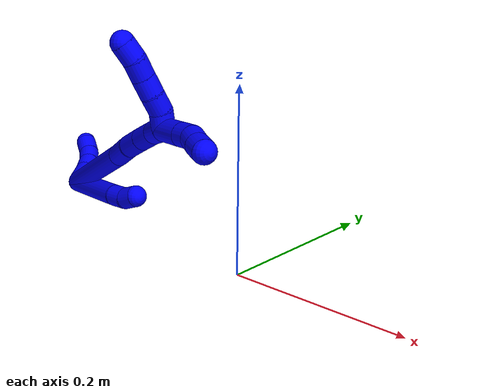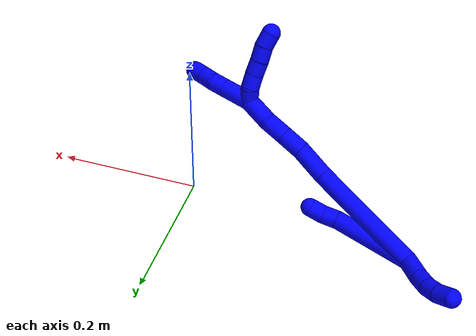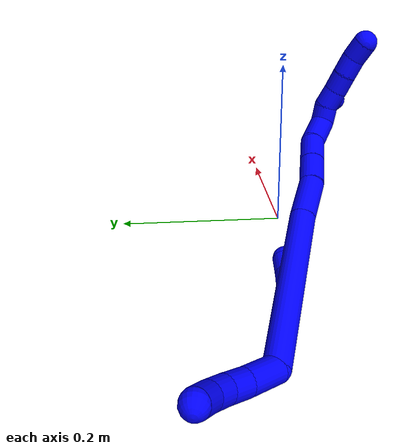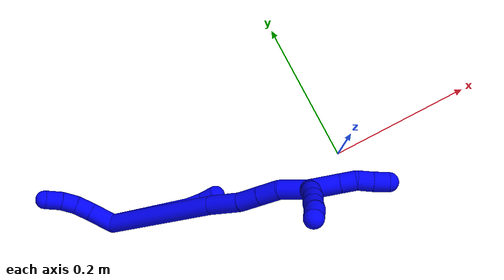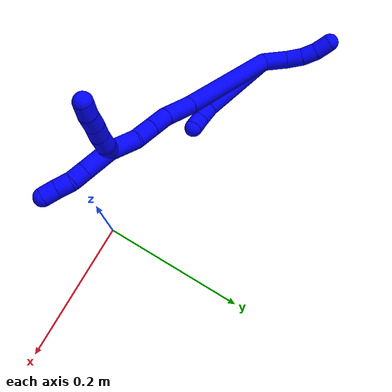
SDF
<sdf version="1.7">
 <world name="default">
  <plugin name="TubeGeneratorPlugin" filename="libtube_generator_plugin.so"/>
  <model name="photoneo_s_sensor">
   <static>1</static>
   <pose>0 0 2 1.57079 1.57079 3.14159</pose>
   <link name="link">
    <inertial><mass>0.1</mass></inertial>
    <sensor name="sensor" type="depth">
     <update_rate>30</update_rate>
     <camera>
      <horizontal_fov>1.22</horizontal_fov>
      <image><width>1920</width><height>1200</height><format>B8G8R8</format></image>
      <clip><near>0.1</near><far>4</far></clip>
      <depth_camera><output>points</output></depth_camera>
     </camera>
     <plugin name="camera_plugin" filename="libgazebo_ros_depth_camera.so">
      <baseline>0.2</baseline>
      <alwaysOn>1</alwaysOn>
      <updateRate>0.0</updateRate>
      <cameraName>camera_ir</cameraName>
      <imageTopicName>/camera/color/image_raw</imageTopicName>
      <cameraInfoTopicName>/camera/color/camera_info</cameraInfoTopicName>
      <depthImageTopicName>/camera/depth/image_raw</depthImageTopicName>
      <depthImageCameraInfoTopicName>/camera/depth/camera_info</depthImageCameraInfoTopicName>
      <pointCloudTopicName>/camera/depth/points</pointCloudTopicName>
      <frameName>fr_optical</frameName>
      <pointCloudCutoff>0.1</pointCloudCutoff>
      <pointCloudCutoffMax>2.0</pointCloudCutoffMax>
      <distortionK1>0</distortionK1>
      <distortionK2>0</distortionK2>
      <distortionK3>0</distortionK3>
      <distortionT1>0</distortionT1>
      <distortionT2>0</distortionT2>
      <CxPrime>0</CxPrime>
      <Cx>0</Cx>
      <Cy>0</Cy>
      <focalLength>0</focalLength>
      <hackBaseline>0</hackBaseline>
     </plugin>
    </sensor>
   </link>
  </model>
  <gravity>0 0 -9.8</gravity>
  <magnetic_field>6e-06 2.3e-05 -4.2e-05</magnetic_field>
  <atmosphere type="adiabatic"/>
  <physics name="default_physics" default="0" type="ode">
   <max_step_size>0.003</max_step_size>
   <real_time_factor>1</real_time_factor>
   <real_time_update_rate>1000</real_time_update_rate>
   <max_contacts>10000</max_contacts>
   <ode>
    <solver>
     <type>quick</type>
     <iters>100</iters>
     <sor>1.3</sor>
     <use_dynamic_moi_rescaling>0</use_dynamic_moi_rescaling>
    </solver>
    <constraints>
     <contact_max_correcting_vel>0</contact_max_correcting_vel>
     <contact_surface_layer>0.001</contact_surface_layer>
     <cfm>0</cfm>
     <erp>0.2</erp>
    </constraints>
   </ode>
  </physics>
  <scene><ambient>0.4 0.4 0.4 1</ambient><background>0.7 0.7 0.7 1</background><shadows>0</shadows></scene>
  <audio><device>default</device></audio>
  <spherical_coordinates>
   <surface_model>EARTH_WGS84</surface_model>
   <latitude_deg>0</latitude_deg>
   <longitude_deg>0</longitude_deg>
   <elevation>0</elevation>
   <heading_deg>0</heading_deg>
  </spherical_coordinates>
  <model name="bin">
   <static>1</static>
   <link name="bottom">
    <collision name="collision-bottom">
     <pose>0 0 -0.01 0 -0 0</pose>
     <geometry><box><size>0.8 0.6 0.02</size></box></geometry>
     <surface>
      <friction><ode><mu>100</mu><mu2>100</mu2></ode></friction>
      <contact><collide_bitmask>65535</collide_bitmask></contact>
     </surface>
    </collision>
   </link>
   <link name="west_wall">
    <collision name="collision-west_wall">
     <pose>-0.41 0 0.1 0 -0 0</pose>
     <geometry><box><size>0.02 0.6 0.2</size></box></geometry>
     <surface>
      <friction><ode><mu>100</mu><mu2>100</mu2></ode></friction>
      <contact><collide_bitmask>65535</collide_bitmask></contact>
     </surface>
    </collision>
   </link>
   <link name="east_wall">
    <collision name="collision-east_wall">
     <pose>0.41 0 0.1 0 -0 0</pose>
     <geometry><box><size>0.02 0.6 0.2</size></box></geometry>
     <surface>
      <friction><ode><mu>100</mu><mu2>100</mu2></ode></friction>
      <contact><collide_bitmask>65535</collide_bitmask></contact>
     </surface>
    </collision>
   </link>
   <link name="south_wall">
    <collision name="collision-south_wall">
     <pose>0 -0.31 0.1 0 -0 0</pose>
     <geometry><box><size>0.8 0.02 0.2</size></box></geometry>
     <surface>
      <friction><ode><mu>100</mu><mu2>100</mu2></ode></friction>
      <contact><collide_bitmask>65535</collide_bitmask></contact>
     </surface>
    </collision>
   </link>
   <link name="north_wall">
    <collision name="collision-north_wall">
     <pose>0 0.31 0.1 0 -0 0</pose>
     <geometry><box><size>0.8 0.02 0.2</size></box></geometry>
     <surface>
      <friction><ode><mu>100</mu><mu2>100</mu2></ode></friction>
      <contact><collide_bitmask>65535</collide_bitmask></contact>
     </surface>
    </collision>
   </link>
  </model>
  <model name="1">
   <static>0</static>
   <link name="1">
    <collision name="collision-cylinder-e_1_2_8">
     <pose>0.003344 -0.003769 -0.054073 3.072 0.061619 1.44931</pose>
     <geometry><cylinder><radius>0.0125</radius><length>0.108615</length></cylinder></geometry>
     <surface>
      <friction><ode><mu>1.16</mu><mu2>1.16</mu2><slip1>0</slip1><slip2>0</slip2></ode></friction>
      <contact><ode><kp>1e+06</kp><kd>1</kd><max_vel>0</max_vel><min_depth>0.001</min_depth></ode></contact>
     </surface>
    </collision>
    <visual name="visual-cylinder-e_1_2_8">
     <pose>0.003344 -0.003769 -0.054073 3.072 0.061619 1.44931</pose>
     <geometry><cylinder><radius>0.0125</radius><length>0.108615</length></cylinder></geometry>
     <material><ambient>0 0 1 1</ambient></material>
    </visual>
    <collision name="collision-cylinder-e_2_8_9">
     <pose>0.005626 -0.007527 -0.118743 -3.14054 -0.099923 3.1206</pose>
     <geometry><cylinder><radius>0.0125</radius><length>0.021299</length></cylinder></geometry>
     <surface>
      <friction><ode><mu>1.16</mu><mu2>1.16</mu2><slip1>0</slip1><slip2>0</slip2></ode></friction>
      <contact><ode><kp>1e+06</kp><kd>1</kd><max_vel>0</max_vel><min_depth>0.001</min_depth></ode></contact>
     </surface>
    </collision>
    <visual name="visual-cylinder-e_2_8_9">
     <pose>0.005626 -0.007527 -0.118743 -3.14054 -0.099923 3.1206</pose>
     <geometry><cylinder><radius>0.0125</radius><length>0.021299</length></cylinder></geometry>
     <material><ambient>0 0 1 1</ambient></material>
    </visual>
    <collision name="collision-cylinder-e_3_9_6">
     <pose>0.004946 -0.004791 -0.138998 -2.86654 0.038032 -0.273119</pose>
     <geometry><cylinder><radius>0.0125</radius><length>0.020085</length></cylinder></geometry>
     <surface>
      <friction><ode><mu>1.16</mu><mu2>1.16</mu2><slip1>0</slip1><slip2>0</slip2></ode></friction>
      <contact><ode><kp>1e+06</kp><kd>1</kd><max_vel>0</max_vel><min_depth>0.001</min_depth></ode></contact>
     </surface>
    </collision>
    <visual name="visual-cylinder-e_3_9_6">
     <pose>0.004946 -0.004791 -0.138998 -2.86654 0.038032 -0.273119</pose>
     <geometry><cylinder><radius>0.0125</radius><length>0.020085</length></cylinder></geometry>
     <material><ambient>0 0 1 1</ambient></material>
    </visual>
    <collision name="collision-cylinder-e_1_2_10">
     <pose>-0.006559 0.010748 0.011905 -0.73436 -0.388167 0.150914</pose>
     <geometry><cylinder><radius>0.0125</radius><length>0.034656</length></cylinder></geometry>
     <surface>
      <friction><ode><mu>1.16</mu><mu2>1.16</mu2><slip1>0</slip1><slip2>0</slip2></ode></friction>
      <contact><ode><kp>1e+06</kp><kd>1</kd><max_vel>0</max_vel><min_depth>0.001</min_depth></ode></contact>
     </surface>
    </collision>
    <visual name="visual-cylinder-e_1_2_10">
     <pose>-0.006559 0.010748 0.011905 -0.73436 -0.388167 0.150914</pose>
     <geometry><cylinder><radius>0.0125</radius><length>0.034656</length></cylinder></geometry>
     <material><ambient>0 0 1 1</ambient></material>
    </visual>
    <collision name="collision-cylinder-e_2_10_11">
     <pose>-0.016111 0.029092 0.031447 -0.782791 -0.271116 0.112458</pose>
     <geometry><cylinder><radius>0.0125</radius><length>0.02236</length></cylinder></geometry>
     <surface>
      <friction><ode><mu>1.16</mu><mu2>1.16</mu2><slip1>0</slip1><slip2>0</slip2></ode></friction>
      <contact><ode><kp>1e+06</kp><kd>1</kd><max_vel>0</max_vel><min_depth>0.001</min_depth></ode></contact>
     </surface>
    </collision>
    <visual name="visual-cylinder-e_2_10_11">
     <pose>-0.016111 0.029092 0.031447 -0.782791 -0.271116 0.112458</pose>
     <geometry><cylinder><radius>0.0125</radius><length>0.02236</length></cylinder></geometry>
     <material><ambient>0 0 1 1</ambient></material>
    </visual>
    <collision name="collision-cylinder-e_3_11_12">
     <pose>-0.020005 0.043408 0.046797 -0.716574 -0.087773 0.032885</pose>
     <geometry><cylinder><radius>0.0125</radius><length>0.020539</length></cylinder></geometry>
     <surface>
      <friction><ode><mu>1.16</mu><mu2>1.16</mu2><slip1>0</slip1><slip2>0</slip2></ode></friction>
      <contact><ode><kp>1e+06</kp><kd>1</kd><max_vel>0</max_vel><min_depth>0.001</min_depth></ode></contact>
     </surface>
    </collision>
    <visual name="visual-cylinder-e_3_11_12">
     <pose>-0.020005 0.043408 0.046797 -0.716574 -0.087773 0.032885</pose>
     <geometry><cylinder><radius>0.0125</radius><length>0.020539</length></cylinder></geometry>
     <material><ambient>0 0 1 1</ambient></material>
    </visual>
    <collision name="collision-cylinder-e_4_12_5">
     <pose>-0.019626 0.056805 0.063439 -0.642225 0.114227 -0.038032</pose>
     <geometry><cylinder><radius>0.0125</radius><length>0.022446</length></cylinder></geometry>
     <surface>
      <friction><ode><mu>1.16</mu><mu2>1.16</mu2><slip1>0</slip1><slip2>0</slip2></ode></friction>
      <contact><ode><kp>1e+06</kp><kd>1</kd><max_vel>0</max_vel><min_depth>0.001</min_depth></ode></contact>
     </surface>
    </collision>
    <visual name="visual-cylinder-e_4_12_5">
     <pose>-0.019626 0.056805 0.063439 -0.642225 0.114227 -0.038032</pose>
     <geometry><cylinder><radius>0.0125</radius><length>0.022446</length></cylinder></geometry>
     <material><ambient>0 0 1 1</ambient></material>
    </visual>
    <collision name="collision-cylinder-e_1_2_13">
     <pose>0.025376 0.013118 -0.073785 -2.96565 0.32649 -2.15833</pose>
     <geometry><cylinder><radius>0.0125</radius><length>0.158243</length></cylinder></geometry>
     <surface>
      <friction><ode><mu>1.16</mu><mu2>1.16</mu2><slip1>0</slip1><slip2>0</slip2></ode></friction>
      <contact><ode><kp>1e+06</kp><kd>1</kd><max_vel>0</max_vel><min_depth>0.001</min_depth></ode></contact>
     </surface>
    </collision>
    <visual name="visual-cylinder-e_1_2_13">
     <pose>0.025376 0.013118 -0.073785 -2.96565 0.32649 -2.15833</pose>
     <geometry><cylinder><radius>0.0125</radius><length>0.158243</length></cylinder></geometry>
     <material><ambient>0 0 1 1</ambient></material>
    </visual>
    <collision name="collision-cylinder-e_2_13_14">
     <pose>0.059211 0.029019 -0.167893 -3.00549 0.391141 -2.47888</pose>
     <geometry><cylinder><radius>0.0125</radius><length>0.044377</length></cylinder></geometry>
     <surface>
      <friction><ode><mu>1.16</mu><mu2>1.16</mu2><slip1>0</slip1><slip2>0</slip2></ode></friction>
      <contact><ode><kp>1e+06</kp><kd>1</kd><max_vel>0</max_vel><min_depth>0.001</min_depth></ode></contact>
     </surface>
    </collision>
    <visual name="visual-cylinder-e_2_13_14">
     <pose>0.059211 0.029019 -0.167893 -3.00549 0.391141 -2.47888</pose>
     <geometry><cylinder><radius>0.0125</radius><length>0.044377</length></cylinder></geometry>
     <material><ambient>0 0 1 1</ambient></material>
    </visual>
    <collision name="collision-cylinder-e_3_14_15">
     <pose>0.071458 0.035588 -0.202449 -2.88164 0.251732 -1.53831</pose>
     <geometry><cylinder><radius>0.0125</radius><length>0.030415</length></cylinder></geometry>
     <surface>
      <friction><ode><mu>1.16</mu><mu2>1.16</mu2><slip1>0</slip1><slip2>0</slip2></ode></friction>
      <contact><ode><kp>1e+06</kp><kd>1</kd><max_vel>0</max_vel><min_depth>0.001</min_depth></ode></contact>
     </surface>
    </collision>
    <visual name="visual-cylinder-e_3_14_15">
     <pose>0.071458 0.035588 -0.202449 -2.88164 0.251732 -1.53831</pose>
     <geometry><cylinder><radius>0.0125</radius><length>0.030415</length></cylinder></geometry>
     <material><ambient>0 0 1 1</ambient></material>
    </visual>
    <collision name="collision-cylinder-e_4_15_16">
     <pose>0.078661 0.042679 -0.23011 -2.90018 0.24212 -1.57374</pose>
     <geometry><cylinder><radius>0.0125</radius><length>0.028489</length></cylinder></geometry>
     <surface>
      <friction><ode><mu>1.16</mu><mu2>1.16</mu2><slip1>0</slip1><slip2>0</slip2></ode></friction>
      <contact><ode><kp>1e+06</kp><kd>1</kd><max_vel>0</max_vel><min_depth>0.001</min_depth></ode></contact>
     </surface>
    </collision>
    <visual name="visual-cylinder-e_4_15_16">
     <pose>0.078661 0.042679 -0.23011 -2.90018 0.24212 -1.57374</pose>
     <geometry><cylinder><radius>0.0125</radius><length>0.028489</length></cylinder></geometry>
     <material><ambient>0 0 1 1</ambient></material>
    </visual>
    <collision name="collision-cylinder-e_5_16_1">
     <pose>0.088908 0.045177 -0.261504 3.0966 0.363007 2.89759</pose>
     <geometry><cylinder><radius>0.0125</radius><length>0.038476</length></cylinder></geometry>
     <surface>
      <friction><ode><mu>1.16</mu><mu2>1.16</mu2><slip1>0</slip1><slip2>0</slip2></ode></friction>
      <contact><ode><kp>1e+06</kp><kd>1</kd><max_vel>0</max_vel><min_depth>0.001</min_depth></ode></contact>
     </surface>
    </collision>
    <visual name="visual-cylinder-e_5_16_1">
     <pose>0.088908 0.045177 -0.261504 3.0966 0.363007 2.89759</pose>
     <geometry><cylinder><radius>0.0125</radius><length>0.038476</length></cylinder></geometry>
     <material><ambient>0 0 1 1</ambient></material>
    </visual>
    <collision name="collision-cylinder-e_1_1_17">
     <pose>0.103429 0.050544 -0.281119 -1.83162 0.877341 -1.09665</pose>
     <geometry><cylinder><radius>0.0125</radius><length>0.02</length></cylinder></geometry>
     <surface>
      <friction><ode><mu>1.16</mu><mu2>1.16</mu2><slip1>0</slip1><slip2>0</slip2></ode></friction>
      <contact><ode><kp>1e+06</kp><kd>1</kd><max_vel>0</max_vel><min_depth>0.001</min_depth></ode></contact>
     </surface>
    </collision>
    <visual name="visual-cylinder-e_1_1_17">
     <pose>0.103429 0.050544 -0.281119 -1.83162 0.877341 -1.09665</pose>
     <geometry><cylinder><radius>0.0125</radius><length>0.02</length></cylinder></geometry>
     <material><ambient>0 0 1 1</ambient></material>
    </visual>
    <collision name="collision-cylinder-e_2_17_18">
     <pose>0.120429 0.060314 -0.283411 -1.74786 1.19695 -1.36734</pose>
     <geometry><cylinder><radius>0.0125</radius><length>0.02</length></cylinder></geometry>
     <surface>
      <friction><ode><mu>1.16</mu><mu2>1.16</mu2><slip1>0</slip1><slip2>0</slip2></ode></friction>
      <contact><ode><kp>1e+06</kp><kd>1</kd><max_vel>0</max_vel><min_depth>0.001</min_depth></ode></contact>
     </surface>
    </collision>
    <visual name="visual-cylinder-e_2_17_18">
     <pose>0.120429 0.060314 -0.283411 -1.74786 1.19695 -1.36734</pose>
     <geometry><cylinder><radius>0.0125</radius><length>0.02</length></cylinder></geometry>
     <material><ambient>0 0 1 1</ambient></material>
    </visual>
    <collision name="collision-cylinder-e_3_18_19">
     <pose>0.138786 0.068159 -0.28379 -1.50881 1.13089 -1.07553</pose>
     <geometry><cylinder><radius>0.0125</radius><length>0.02</length></cylinder></geometry>
     <surface>
      <friction><ode><mu>1.16</mu><mu2>1.16</mu2><slip1>0</slip1><slip2>0</slip2></ode></friction>
      <contact><ode><kp>1e+06</kp><kd>1</kd><max_vel>0</max_vel><min_depth>0.001</min_depth></ode></contact>
     </surface>
    </collision>
    <visual name="visual-cylinder-e_3_18_19">
     <pose>0.138786 0.068159 -0.28379 -1.50881 1.13089 -1.07553</pose>
     <geometry><cylinder><radius>0.0125</radius><length>0.02</length></cylinder></geometry>
     <material><ambient>0 0 1 1</ambient></material>
    </visual>
    <collision name="collision-cylinder-e_4_19_20">
     <pose>0.15701 0.076348 -0.284075 -1.70923 1.16189 -1.29253</pose>
     <geometry><cylinder><radius>0.0125</radius><length>0.02</length></cylinder></geometry>
     <surface>
      <friction><ode><mu>1.16</mu><mu2>1.16</mu2><slip1>0</slip1><slip2>0</slip2></ode></friction>
      <contact><ode><kp>1e+06</kp><kd>1</kd><max_vel>0</max_vel><min_depth>0.001</min_depth></ode></contact>
     </surface>
    </collision>
    <visual name="visual-cylinder-e_4_19_20">
     <pose>0.15701 0.076348 -0.284075 -1.70923 1.16189 -1.29253</pose>
     <geometry><cylinder><radius>0.0125</radius><length>0.02</length></cylinder></geometry>
     <material><ambient>0 0 1 1</ambient></material>
    </visual>
    <collision name="collision-cylinder-e_5_20_4">
     <pose>0.175566 0.083482 -0.283286 -1.17452 1.21703 -0.868424</pose>
     <geometry><cylinder><radius>0.0125</radius><length>0.02</length></cylinder></geometry>
     <surface>
      <friction><ode><mu>1.16</mu><mu2>1.16</mu2><slip1>0</slip1><slip2>0</slip2></ode></friction>
      <contact><ode><kp>1e+06</kp><kd>1</kd><max_vel>0</max_vel><min_depth>0.001</min_depth></ode></contact>
     </surface>
    </collision>
    <visual name="visual-cylinder-e_5_20_4">
     <pose>0.175566 0.083482 -0.283286 -1.17452 1.21703 -0.868424</pose>
     <geometry><cylinder><radius>0.0125</radius><length>0.02</length></cylinder></geometry>
     <material><ambient>0 0 1 1</ambient></material>
    </visual>
    <collision name="collision-cylinder-e_1_1_21">
     <pose>0.096908 0.042331 -0.299131 3.03838 0.059063 1.039</pose>
     <geometry><cylinder><radius>0.0125</radius><length>0.0396</length></cylinder></geometry>
     <surface>
      <friction><ode><mu>1.16</mu><mu2>1.16</mu2><slip1>0</slip1><slip2>0</slip2></ode></friction>
      <contact><ode><kp>1e+06</kp><kd>1</kd><max_vel>0</max_vel><min_depth>0.001</min_depth></ode></contact>
     </surface>
    </collision>
    <visual name="visual-cylinder-e_1_1_21">
     <pose>0.096908 0.042331 -0.299131 3.03838 0.059063 1.039</pose>
     <geometry><cylinder><radius>0.0125</radius><length>0.0396</length></cylinder></geometry>
     <material><ambient>0 0 1 1</ambient></material>
    </visual>
    <collision name="collision-cylinder-e_2_21_22">
     <pose>0.098723 0.039282 -0.328841 3.04116 0.063952 1.13358</pose>
     <geometry><cylinder><radius>0.0125</radius><length>0.020243</length></cylinder></geometry>
     <surface>
      <friction><ode><mu>1.16</mu><mu2>1.16</mu2><slip1>0</slip1><slip2>0</slip2></ode></friction>
      <contact><ode><kp>1e+06</kp><kd>1</kd><max_vel>0</max_vel><min_depth>0.001</min_depth></ode></contact>
     </surface>
    </collision>
    <visual name="visual-cylinder-e_2_21_22">
     <pose>0.098723 0.039282 -0.328841 3.04116 0.063952 1.13358</pose>
     <geometry><cylinder><radius>0.0125</radius><length>0.020243</length></cylinder></geometry>
     <material><ambient>0 0 1 1</ambient></material>
    </visual>
    <collision name="collision-cylinder-e_3_22_23">
     <pose>0.100693 0.034249 -0.347992 2.72561 0.132193 0.607861</pose>
     <geometry><cylinder><radius>0.0125</radius><length>0.020074</length></cylinder></geometry>
     <surface>
      <friction><ode><mu>1.16</mu><mu2>1.16</mu2><slip1>0</slip1><slip2>0</slip2></ode></friction>
      <contact><ode><kp>1e+06</kp><kd>1</kd><max_vel>0</max_vel><min_depth>0.001</min_depth></ode></contact>
     </surface>
    </collision>
    <visual name="visual-cylinder-e_3_22_23">
     <pose>0.100693 0.034249 -0.347992 2.72561 0.132193 0.607861</pose>
     <geometry><cylinder><radius>0.0125</radius><length>0.020074</length></cylinder></geometry>
     <material><ambient>0 0 1 1</ambient></material>
    </visual>
    <collision name="collision-cylinder-e_4_23_3">
     <pose>0.103159 0.026821 -0.366469 2.793 0.114112 0.627338</pose>
     <geometry><cylinder><radius>0.0125</radius><length>0.020083</length></cylinder></geometry>
     <surface>
      <friction><ode><mu>1.16</mu><mu2>1.16</mu2><slip1>0</slip1><slip2>0</slip2></ode></friction>
      <contact><ode><kp>1e+06</kp><kd>1</kd><max_vel>0</max_vel><min_depth>0.001</min_depth></ode></contact>
     </surface>
    </collision>
    <visual name="visual-cylinder-e_4_23_3">
     <pose>0.103159 0.026821 -0.366469 2.793 0.114112 0.627338</pose>
     <geometry><cylinder><radius>0.0125</radius><length>0.020083</length></cylinder></geometry>
     <material><ambient>0 0 1 1</ambient></material>
    </visual>
    <collision name="collision-sphere-3">
     <pose>0.104303 0.023413 -0.375845 0 -0 0</pose>
     <geometry><sphere><radius>0.0125</radius></sphere></geometry>
     <surface>
      <friction><ode><mu>1.16</mu><mu2>1.16</mu2><slip1>0</slip1><slip2>0</slip2></ode></friction>
      <contact><ode><kp>1e+06</kp><kd>1</kd><max_vel>0</max_vel><min_depth>0.001</min_depth></ode></contact>
     </surface>
    </collision>
    <visual name="visual-sphere-3">
     <pose>0.104303 0.023413 -0.375845 0 -0 0</pose>
     <geometry><sphere><radius>0.0125</radius></sphere></geometry>
     <material><ambient>0 0 1 1</ambient></material>
    </visual>
    <collision name="collision-sphere-23">
     <pose>0.102016 0.030228 -0.357093 0 -0 0</pose>
     <geometry><sphere><radius>0.0125</radius></sphere></geometry>
     <surface>
      <friction><ode><mu>1.16</mu><mu2>1.16</mu2><slip1>0</slip1><slip2>0</slip2></ode></friction>
      <contact><ode><kp>1e+06</kp><kd>1</kd><max_vel>0</max_vel><min_depth>0.001</min_depth></ode></contact>
     </surface>
    </collision>
    <visual name="visual-sphere-23">
     <pose>0.102016 0.030228 -0.357093 0 -0 0</pose>
     <geometry><sphere><radius>0.0125</radius></sphere></geometry>
     <material><ambient>0 0 1 1</ambient></material>
    </visual>
    <collision name="collision-sphere-22">
     <pose>0.09937 0.038269 -0.338891 0 -0 0</pose>
     <geometry><sphere><radius>0.0125</radius></sphere></geometry>
     <surface>
      <friction><ode><mu>1.16</mu><mu2>1.16</mu2><slip1>0</slip1><slip2>0</slip2></ode></friction>
      <contact><ode><kp>1e+06</kp><kd>1</kd><max_vel>0</max_vel><min_depth>0.001</min_depth></ode></contact>
     </surface>
    </collision>
    <visual name="visual-sphere-22">
     <pose>0.09937 0.038269 -0.338891 0 -0 0</pose>
     <geometry><sphere><radius>0.0125</radius></sphere></geometry>
     <material><ambient>0 0 1 1</ambient></material>
    </visual>
    <collision name="collision-sphere-21">
     <pose>0.098076 0.040295 -0.318791 0 -0 0</pose>
     <geometry><sphere><radius>0.0125</radius></sphere></geometry>
     <surface>
      <friction><ode><mu>1.16</mu><mu2>1.16</mu2><slip1>0</slip1><slip2>0</slip2></ode></friction>
      <contact><ode><kp>1e+06</kp><kd>1</kd><max_vel>0</max_vel><min_depth>0.001</min_depth></ode></contact>
     </surface>
    </collision>
    <visual name="visual-sphere-21">
     <pose>0.098076 0.040295 -0.318791 0 -0 0</pose>
     <geometry><sphere><radius>0.0125</radius></sphere></geometry>
     <material><ambient>0 0 1 1</ambient></material>
    </visual>
    <collision name="collision-sphere-4">
     <pose>0.184947 0.086678 -0.281949 0 -0 0</pose>
     <geometry><sphere><radius>0.0125</radius></sphere></geometry>
     <surface>
      <friction><ode><mu>1.16</mu><mu2>1.16</mu2><slip1>0</slip1><slip2>0</slip2></ode></friction>
      <contact><ode><kp>1e+06</kp><kd>1</kd><max_vel>0</max_vel><min_depth>0.001</min_depth></ode></contact>
     </surface>
    </collision>
    <visual name="visual-sphere-4">
     <pose>0.184947 0.086678 -0.281949 0 -0 0</pose>
     <geometry><sphere><radius>0.0125</radius></sphere></geometry>
     <material><ambient>0 0 1 1</ambient></material>
    </visual>
    <collision name="collision-sphere-20">
     <pose>0.166185 0.080286 -0.284624 0 -0 0</pose>
     <geometry><sphere><radius>0.0125</radius></sphere></geometry>
     <surface>
      <friction><ode><mu>1.16</mu><mu2>1.16</mu2><slip1>0</slip1><slip2>0</slip2></ode></friction>
      <contact><ode><kp>1e+06</kp><kd>1</kd><max_vel>0</max_vel><min_depth>0.001</min_depth></ode></contact>
     </surface>
    </collision>
    <visual name="visual-sphere-20">
     <pose>0.166185 0.080286 -0.284624 0 -0 0</pose>
     <geometry><sphere><radius>0.0125</radius></sphere></geometry>
     <material><ambient>0 0 1 1</ambient></material>
    </visual>
    <collision name="collision-sphere-11">
     <pose>-0.019105 0.036689 0.039083 0 -0 0</pose>
     <geometry><sphere><radius>0.0125</radius></sphere></geometry>
     <surface>
      <friction><ode><mu>1.16</mu><mu2>1.16</mu2><slip1>0</slip1><slip2>0</slip2></ode></friction>
      <contact><ode><kp>1e+06</kp><kd>1</kd><max_vel>0</max_vel><min_depth>0.001</min_depth></ode></contact>
     </surface>
    </collision>
    <visual name="visual-sphere-11">
     <pose>-0.019105 0.036689 0.039083 0 -0 0</pose>
     <geometry><sphere><radius>0.0125</radius></sphere></geometry>
     <material><ambient>0 0 1 1</ambient></material>
    </visual>
    <collision name="collision-sphere-10">
     <pose>-0.013117 0.021496 0.02381 0 -0 0</pose>
     <geometry><sphere><radius>0.0125</radius></sphere></geometry>
     <surface>
      <friction><ode><mu>1.16</mu><mu2>1.16</mu2><slip1>0</slip1><slip2>0</slip2></ode></friction>
      <contact><ode><kp>1e+06</kp><kd>1</kd><max_vel>0</max_vel><min_depth>0.001</min_depth></ode></contact>
     </surface>
    </collision>
    <visual name="visual-sphere-10">
     <pose>-0.013117 0.021496 0.02381 0 -0 0</pose>
     <geometry><sphere><radius>0.0125</radius></sphere></geometry>
     <material><ambient>0 0 1 1</ambient></material>
    </visual>
    <collision name="collision-sphere-6">
     <pose>0.005327 -0.002065 -0.148656 0 -0 0</pose>
     <geometry><sphere><radius>0.0125</radius></sphere></geometry>
     <surface>
      <friction><ode><mu>1.16</mu><mu2>1.16</mu2><slip1>0</slip1><slip2>0</slip2></ode></friction>
      <contact><ode><kp>1e+06</kp><kd>1</kd><max_vel>0</max_vel><min_depth>0.001</min_depth></ode></contact>
     </surface>
    </collision>
    <visual name="visual-sphere-6">
     <pose>0.005327 -0.002065 -0.148656 0 -0 0</pose>
     <geometry><sphere><radius>0.0125</radius></sphere></geometry>
     <material><ambient>0 0 1 1</ambient></material>
    </visual>
    <collision name="collision-sphere-9">
     <pose>0.004564 -0.007516 -0.12934 0 -0 0</pose>
     <geometry><sphere><radius>0.0125</radius></sphere></geometry>
     <surface>
      <friction><ode><mu>1.16</mu><mu2>1.16</mu2><slip1>0</slip1><slip2>0</slip2></ode></friction>
      <contact><ode><kp>1e+06</kp><kd>1</kd><max_vel>0</max_vel><min_depth>0.001</min_depth></ode></contact>
     </surface>
    </collision>
    <visual name="visual-sphere-9">
     <pose>0.004564 -0.007516 -0.12934 0 -0 0</pose>
     <geometry><sphere><radius>0.0125</radius></sphere></geometry>
     <material><ambient>0 0 1 1</ambient></material>
    </visual>
    <collision name="collision-sphere-2">
     <geometry><sphere><radius>0.0125</radius></sphere></geometry>
     <surface>
      <friction><ode><mu>1.16</mu><mu2>1.16</mu2><slip1>0</slip1><slip2>0</slip2></ode></friction>
      <contact><ode><kp>1e+06</kp><kd>1</kd><max_vel>0</max_vel><min_depth>0.001</min_depth></ode></contact>
     </surface>
    </collision>
    <visual name="visual-sphere-2">
     <geometry><sphere><radius>0.0125</radius></sphere></geometry>
     <material><ambient>0 0 1 1</ambient></material>
    </visual>
    <collision name="collision-sphere-19">
     <pose>0.147834 0.07241 -0.283526 0 -0 0</pose>
     <geometry><sphere><radius>0.0125</radius></sphere></geometry>
     <surface>
      <friction><ode><mu>1.16</mu><mu2>1.16</mu2><slip1>0</slip1><slip2>0</slip2></ode></friction>
      <contact><ode><kp>1e+06</kp><kd>1</kd><max_vel>0</max_vel><min_depth>0.001</min_depth></ode></contact>
     </surface>
    </collision>
    <visual name="visual-sphere-19">
     <pose>0.147834 0.07241 -0.283526 0 -0 0</pose>
     <geometry><sphere><radius>0.0125</radius></sphere></geometry>
     <material><ambient>0 0 1 1</ambient></material>
    </visual>
    <collision name="collision-sphere-8">
     <pose>0.006689 -0.007538 -0.108147 0 -0 0</pose>
     <geometry><sphere><radius>0.0125</radius></sphere></geometry>
     <surface>
      <friction><ode><mu>1.16</mu><mu2>1.16</mu2><slip1>0</slip1><slip2>0</slip2></ode></friction>
      <contact><ode><kp>1e+06</kp><kd>1</kd><max_vel>0</max_vel><min_depth>0.001</min_depth></ode></contact>
     </surface>
    </collision>
    <visual name="visual-sphere-8">
     <pose>0.006689 -0.007538 -0.108147 0 -0 0</pose>
     <geometry><sphere><radius>0.0125</radius></sphere></geometry>
     <material><ambient>0 0 1 1</ambient></material>
    </visual>
    <collision name="collision-sphere-12">
     <pose>-0.020906 0.050127 0.054511 0 -0 0</pose>
     <geometry><sphere><radius>0.0125</radius></sphere></geometry>
     <surface>
      <friction><ode><mu>1.16</mu><mu2>1.16</mu2><slip1>0</slip1><slip2>0</slip2></ode></friction>
      <contact><ode><kp>1e+06</kp><kd>1</kd><max_vel>0</max_vel><min_depth>0.001</min_depth></ode></contact>
     </surface>
    </collision>
    <visual name="visual-sphere-12">
     <pose>-0.020906 0.050127 0.054511 0 -0 0</pose>
     <geometry><sphere><radius>0.0125</radius></sphere></geometry>
     <material><ambient>0 0 1 1</ambient></material>
    </visual>
    <collision name="collision-sphere-5">
     <pose>-0.018347 0.063484 0.072367 0 -0 0</pose>
     <geometry><sphere><radius>0.0125</radius></sphere></geometry>
     <surface>
      <friction><ode><mu>1.16</mu><mu2>1.16</mu2><slip1>0</slip1><slip2>0</slip2></ode></friction>
      <contact><ode><kp>1e+06</kp><kd>1</kd><max_vel>0</max_vel><min_depth>0.001</min_depth></ode></contact>
     </surface>
    </collision>
    <visual name="visual-sphere-5">
     <pose>-0.018347 0.063484 0.072367 0 -0 0</pose>
     <geometry><sphere><radius>0.0125</radius></sphere></geometry>
     <material><ambient>0 0 1 1</ambient></material>
    </visual>
    <collision name="collision-sphere-13">
     <pose>0.050752 0.026236 -0.14757 0 -0 0</pose>
     <geometry><sphere><radius>0.0125</radius></sphere></geometry>
     <surface>
      <friction><ode><mu>1.16</mu><mu2>1.16</mu2><slip1>0</slip1><slip2>0</slip2></ode></friction>
      <contact><ode><kp>1e+06</kp><kd>1</kd><max_vel>0</max_vel><min_depth>0.001</min_depth></ode></contact>
     </surface>
    </collision>
    <visual name="visual-sphere-13">
     <pose>0.050752 0.026236 -0.14757 0 -0 0</pose>
     <geometry><sphere><radius>0.0125</radius></sphere></geometry>
     <material><ambient>0 0 1 1</ambient></material>
    </visual>
    <collision name="collision-sphere-14">
     <pose>0.06767 0.031802 -0.188216 0 -0 0</pose>
     <geometry><sphere><radius>0.0125</radius></sphere></geometry>
     <surface>
      <friction><ode><mu>1.16</mu><mu2>1.16</mu2><slip1>0</slip1><slip2>0</slip2></ode></friction>
      <contact><ode><kp>1e+06</kp><kd>1</kd><max_vel>0</max_vel><min_depth>0.001</min_depth></ode></contact>
     </surface>
    </collision>
    <visual name="visual-sphere-14">
     <pose>0.06767 0.031802 -0.188216 0 -0 0</pose>
     <geometry><sphere><radius>0.0125</radius></sphere></geometry>
     <material><ambient>0 0 1 1</ambient></material>
    </visual>
    <collision name="collision-sphere-15">
     <pose>0.075246 0.039373 -0.216683 0 -0 0</pose>
     <geometry><sphere><radius>0.0125</radius></sphere></geometry>
     <surface>
      <friction><ode><mu>1.16</mu><mu2>1.16</mu2><slip1>0</slip1><slip2>0</slip2></ode></friction>
      <contact><ode><kp>1e+06</kp><kd>1</kd><max_vel>0</max_vel><min_depth>0.001</min_depth></ode></contact>
     </surface>
    </collision>
    <visual name="visual-sphere-15">
     <pose>0.075246 0.039373 -0.216683 0 -0 0</pose>
     <geometry><sphere><radius>0.0125</radius></sphere></geometry>
     <material><ambient>0 0 1 1</ambient></material>
    </visual>
    <collision name="collision-sphere-16">
     <pose>0.082077 0.045986 -0.243538 0 -0 0</pose>
     <geometry><sphere><radius>0.0125</radius></sphere></geometry>
     <surface>
      <friction><ode><mu>1.16</mu><mu2>1.16</mu2><slip1>0</slip1><slip2>0</slip2></ode></friction>
      <contact><ode><kp>1e+06</kp><kd>1</kd><max_vel>0</max_vel><min_depth>0.001</min_depth></ode></contact>
     </surface>
    </collision>
    <visual name="visual-sphere-16">
     <pose>0.082077 0.045986 -0.243538 0 -0 0</pose>
     <geometry><sphere><radius>0.0125</radius></sphere></geometry>
     <material><ambient>0 0 1 1</ambient></material>
    </visual>
    <collision name="collision-sphere-1">
     <pose>0.095739 0.044368 -0.279471 0 -0 0</pose>
     <geometry><sphere><radius>0.0125</radius></sphere></geometry>
     <surface>
      <friction><ode><mu>1.16</mu><mu2>1.16</mu2><slip1>0</slip1><slip2>0</slip2></ode></friction>
      <contact><ode><kp>1e+06</kp><kd>1</kd><max_vel>0</max_vel><min_depth>0.001</min_depth></ode></contact>
     </surface>
    </collision>
    <visual name="visual-sphere-1">
     <pose>0.095739 0.044368 -0.279471 0 -0 0</pose>
     <geometry><sphere><radius>0.0125</radius></sphere></geometry>
     <material><ambient>0 0 1 1</ambient></material>
    </visual>
    <collision name="collision-sphere-18">
     <pose>0.129738 0.063909 -0.284054 0 -0 0</pose>
     <geometry><sphere><radius>0.0125</radius></sphere></geometry>
     <surface>
      <friction><ode><mu>1.16</mu><mu2>1.16</mu2><slip1>0</slip1><slip2>0</slip2></ode></friction>
      <contact><ode><kp>1e+06</kp><kd>1</kd><max_vel>0</max_vel><min_depth>0.001</min_depth></ode></contact>
     </surface>
    </collision>
    <visual name="visual-sphere-18">
     <pose>0.129738 0.063909 -0.284054 0 -0 0</pose>
     <geometry><sphere><radius>0.0125</radius></sphere></geometry>
     <material><ambient>0 0 1 1</ambient></material>
    </visual>
    <collision name="collision-sphere-17">
     <pose>0.11112 0.056719 -0.282767 0 -0 0</pose>
     <geometry><sphere><radius>0.0125</radius></sphere></geometry>
     <surface>
      <friction><ode><mu>1.16</mu><mu2>1.16</mu2><slip1>0</slip1><slip2>0</slip2></ode></friction>
      <contact><ode><kp>1e+06</kp><kd>1</kd><max_vel>0</max_vel><min_depth>0.001</min_depth></ode></contact>
     </surface>
    </collision>
    <visual name="visual-sphere-17">
     <pose>0.11112 0.056719 -0.282767 0 -0 0</pose>
     <geometry><sphere><radius>0.0125</radius></sphere></geometry>
     <material><ambient>0 0 1 1</ambient></material>
    </visual>
    <inertial>
     <pose>0.04994 0.027198 -0.147675 0 -0 0</pose>
     <mass>0.75</mass>
     <inertia>
      <ixx>-0.000303</ixx>
      <ixy>0</ixy>
      <ixz>0</ixz>
      <iyy>5.9e-05</iyy>
      <iyz>0</iyz>
      <izz>-0.000221</izz>
     </inertia>
    </inertial>
   </link>
   <pose>-0.321497 0.057822 0.012144 1.76418 -0.712965 -1.88579</pose>
  </model>
 </world>
</sdf>
